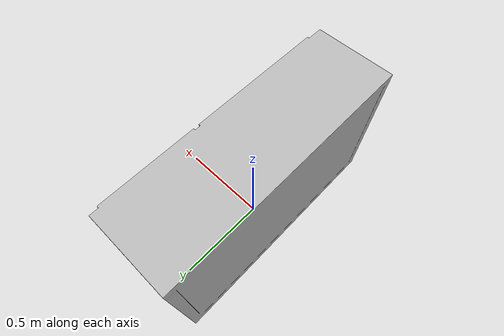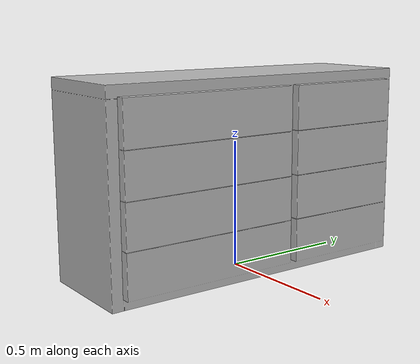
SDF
<?xml version='1.0'?>
<sdf version='1.4'>
  <model name='s__1713'>
    <pose>0 0 0 0 0 0</pose>
    <static>true</static>
    <link name='link'>
      <collision name='collision'>
        <pose>0 0 0 0 0 0</pose>
        <geometry>
          <box>
            <size>0.45 1.32 2</size>
          </box>
        </geometry>
      </collision>
      <visual name='visual'>
        <pose>0 0 0 0 0 0</pose>
        <geometry>
          <mesh><uri>model://s__1713/s__1713.dae</uri></mesh>
        </geometry>
      </visual>
    </link>
  </model>
</sdf>
